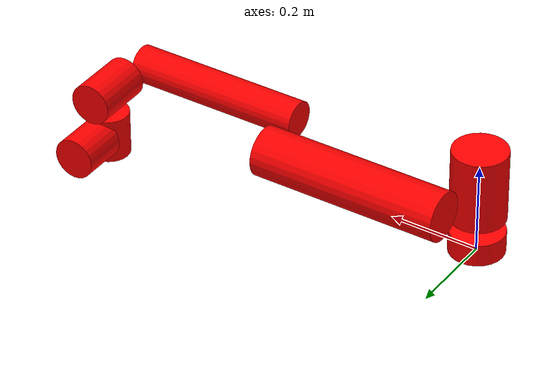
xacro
<?xml version="1.0"?>
<robot name="ur5e" xmlns:xacro="https://ros.org/wiki/xacro">

<!-- ROBOT LINK AND CONSTRUCTION PARAMETERS -->
<!-- The following parameters are obtained from official and unofficial site -->
<!-- https://github.com/ros-industrial/universal_robot -->

    <xacro:property name="shoulder_length" value="0.163"/>
    <xacro:property name="upperarm_length" value="0.425"/>
    <xacro:property name="forearm_length" value="0.3922"/>
    <xacro:property name="wrist1_length" value="0.127"/>
    <xacro:property name="wrist2_length" value="0.0997"/>
    <xacro:property name="wrist3_length" value="0.0996"/>

    <xacro:property name="base_mass" value="4.0"/>
    <xacro:property name="shoulder_mass" value="3.761"/>
    <xacro:property name="upperarm_mass" value="8.058"/>
    <xacro:property name="forearm_mass" value="2.846"/>
    <xacro:property name="wrist1_mass" value="1.37"/>
    <xacro:property name="wrist2_mass" value="1.3"/>
    <xacro:property name="wrist3_mass" value="0.365"/>

    <xacro:property name="shoulder_radius" value="0.06"/>
    <xacro:property name="upperarm_radius" value="0.054"/>
    <xacro:property name="forearm_radius" value="0.040"/>
    <xacro:property name="wrist_radius" value="0.045"/>

    <xacro:property name="shoulder_offset" value="0.138"/>
    <xacro:property name="elbow_offset" value="-0.131"/>
<!-- END OF PARAMETERS -->

<!-- MACROS -->
    <xacro:macro name="cylinder_inertial" params="radius length mass *origin">
        <inertial>
            <mass value="${mass}" />
            <xacro:insert_block name="origin" />
        <inertia ixx="${0.0833333 * mass * (3 * radius * radius + length * length)}" ixy="0.0" ixz="0.0"
            iyy="${0.0833333 * mass * (3 * radius * radius + length * length)}" iyz="0.0"
            izz="${0.5 * mass * radius * radius}" />
        </inertial>
    </xacro:macro>

    <xacro:macro name="transmission_block" params="joint_trans joint_name joint_motor">
        <transmission name="${joint_trans}">
            <type>transmission_interface/SimpleTransmission</type>
            <joint name="${joint_name}">
                <hardwareInterface>hardware_interface/PositionJointInterface</hardwareInterface>
            </joint>
            <actuator name="${joint_motor}">
                <mechanicalReduction>1</mechanicalReduction>
            </actuator>
        </transmission>
   </xacro:macro>

<!-- END OF MACROS -->

<!-- ROBOT LINK AND JOINTS -->
    <link name="world"/>

    <joint name="fixed" type="fixed">
        <parent link="world"/>
        <child link="base_link"/>
    </joint>

    <link name="base_link">
        <xacro:cylinder_inertial radius="0.06" length="0.05" mass="${base_mass}">
            <origin xyz="0.0 0.0 ${0.05/2}" rpy="0.0 0.0 0.0"/>
        </xacro:cylinder_inertial>
        <visual>
            <origin xyz="0.0 0.0 ${0.05/2}" rpy="0.0 0.0 0.0"/>
            <geometry>
                <cylinder radius="0.06" length="0.05"/>
            </geometry>
            <material name="">
                <color rgba="1.0 0.0 0.0 1.0"/>
            </material>
        </visual>
        <collision>
            <origin xyz="0.0 0.0 ${0.05/2}" rpy="0.0 0.0 0.0"/>
            <geometry>
                <cylinder radius="0.06" length="0.05"/>
            </geometry>
        </collision>
    </link>

    <joint name="shoulder_pan" type="revolute">
        <origin xyz="0.0 0.0 ${shoulder_length}" rpy="0.0 0.0 0.0"/>
        <parent link="base_link"/>
        <child link="shoulder_link"/>
        <axis xyz="0 0 1"/>
        <limit lower="${-2.0 * pi}" upper="${2.0 * pi}" effort="150.0" velocity="3.14"/>
        <dynamics damping="0.0" friction="0.0" />
    </joint>

    <link name="shoulder_link">
        <xacro:cylinder_inertial radius="${shoulder_radius}" length="${shoulder_length}" mass="${shoulder_mass}">
            <origin xyz="0.0 0.0 0.0" rpy="0.0 0.0 0.0"/>
        </xacro:cylinder_inertial>
        <visual>
            <origin xyz="0.0 0.0 0.0" rpy="0.0 0.0 0.0"/>
            <geometry>
                <cylinder radius="${shoulder_radius}" length="${shoulder_length}"/>
            </geometry>
            <material name="">
                <color rgba="1.0 0.0 0.0 1.0"/>
            </material>
        </visual>
        <collision>
            <origin xyz="0.0 0.0 0.0" rpy="0.0 0.0 0.0"/>
            <geometry>
                <cylinder radius="${shoulder_radius}" length="${shoulder_length}"/>
            </geometry>
        </collision>
    </link>

    <joint name="shoulder_lift" type="revolute">
        <origin xyz="0.0 ${shoulder_offset} 0.0" rpy="0.0 ${pi/2.0} 0.0"/>
        <parent link="shoulder_link"/>
        <child link="upperarm_link"/>
        <axis xyz="0.0 1.0 0.0"/>
        <limit lower="${-2.0 * pi}" upper="${2.0 * pi}" effort="150.0" velocity="3.14"/>
        <dynamics damping="0.0" friction="0.0" />
    </joint>

    <link name="upperarm_link">
        <xacro:cylinder_inertial radius="${upperarm_radius}" length="${upperarm_length}" mass="${upperarm_mass}">
            <origin xyz="0.0 0.0 ${upperarm_length/2}" rpy="0.0 0.0 0.0"/>
        </xacro:cylinder_inertial>
        <visual>
            <origin xyz="0.0 0.0 ${upperarm_length/2}" rpy="0.0 0.0 0.0"/>
            <geometry>
                <cylinder radius="${upperarm_radius}" length="${upperarm_length}"/>
            </geometry>
            <material name="">
                <color rgba="1.0 0.0 0.0 1.0"/>
            </material>
        </visual>
        <collision>
            <origin xyz="0.0 0.0 ${upperarm_length/2}" rpy="0.0 0.0 0.0"/>
            <geometry>
                <cylinder radius="${upperarm_radius}" length="${upperarm_length}"/>
            </geometry>
        </collision>
    </link>

    <joint name="elbow_joint" type="revolute">
        <origin xyz="0.0 ${elbow_offset} ${upperarm_length}" rpy="0.0 0.0 0.0"/>
        <parent link="upperarm_link"/>
        <child link="forearm_link"/>
        <axis xyz="0.0 1 0.0"/>
        <limit lower="${-pi}" upper="${pi}" effort="150.0" velocity="3.14"/>
        <dynamics damping="0.0" friction="0.0" />
    </joint>

    <link name="forearm_link">
        <xacro:cylinder_inertial radius="${forearm_radius}" length="${forearm_length}" mass="${forearm_mass}">
            <origin xyz="0.0 0.0 ${forearm_length/2}" rpy="0.0 0.0 0.0"/>
        </xacro:cylinder_inertial>
        <visual>
            <origin xyz="0.0 0.0 ${forearm_length/2}" rpy="0.0 0.0 0.0"/>
            <geometry>
                <cylinder radius="${forearm_radius}" length="${forearm_length}"/>
            </geometry>
            <material name="">
                <color rgba="1.0 0.0 0.0 1.0"/>
            </material>
        </visual>
        <collision>
            <origin xyz="0.0 0.0 ${forearm_length/2}" rpy="0.0 0.0 0.0"/>
            <geometry>
                <cylinder radius="${forearm_radius}" length="${forearm_length}"/>
            </geometry>
        </collision>
    </link>

    <joint name="wrist1_joint" type="revolute">
        <origin xyz="0.0 0.0 ${forearm_length}" rpy="0.0 ${pi/2.0} 0.0"/>
        <parent link="forearm_link"/>
        <child link="wrist1_link"/>
        <axis xyz="0.0 1 0.0"/>
        <limit lower="${-2.0*pi}" upper="${2.0*pi}" effort="150.0" velocity="3.14"/>
        <dynamics damping="0.0" friction="0.0" />
    </joint>

   <link name="wrist1_link">
        <xacro:cylinder_inertial radius="${wrist_radius}" length="${wrist1_length}" mass="${wrist1_mass}">
            <origin xyz="0.0 ${wrist1_length} 0.0" rpy="${pi/2} 0.0 0.0"/>
        </xacro:cylinder_inertial>
        <visual>
            <origin xyz="0.0 ${wrist1_length} 0.0" rpy="${pi/2} 0.0 0.0"/>
            <geometry>
                <cylinder radius="${wrist_radius}" length="${wrist1_length}"/>
            </geometry>
            <material name="">
                <color rgba="1.0 0.0 0.0 1.0"/>
            </material>
        </visual>
        <collision>
            <origin xyz="0.0 ${wrist1_length} 0.0" rpy="${pi/2} 0.0 0.0"/>
            <geometry>
                <cylinder radius="${wrist_radius}" length="${wrist1_length}"/>
            </geometry>
        </collision>
    </link>

    <joint name="wrist2_joint" type="revolute">
        <origin xyz="0.0 ${wrist1_length} 0.0" rpy="0.0 0.0 0.0"/>
        <parent link="wrist1_link"/>
        <child link="wrist2_link"/>
        <axis xyz="0.0 0.0 1"/>
        <limit lower="${-2.0*pi}" upper="${2.0*pi}" effort="150.0" velocity="3.14"/>
        <dynamics damping="0.0" friction="0.0" />
    </joint>

   <link name="wrist2_link">
        <xacro:cylinder_inertial radius="${wrist_radius}" length="${wrist2_length}" mass="${wrist2_mass}">
            <origin xyz="0.0 0.0 ${wrist2_length}" rpy="0.0 0.0 0.0"/>
        </xacro:cylinder_inertial>
        <visual>
            <origin xyz="0.0 0.0 ${wrist2_length}" rpy="0.0 0.0 0.0"/>
            <geometry>
                <cylinder radius="${wrist_radius}" length="${wrist2_length}"/>
            </geometry>
            <material name="">
                <color rgba="1.0 0.0 0.0 1.0"/>
            </material>
        </visual>
        <collision>
            <origin xyz="0.0 0.0 ${wrist2_length}" rpy="0.0 0.0 0.0"/>
            <geometry>
                <cylinder radius="${wrist_radius}" length="${wrist2_length}"/>
            </geometry>
        </collision>
    </link>

    <joint name="wrist3_joint" type="revolute">
        <origin xyz="0.0 0.0 ${wrist2_length}" rpy="0.0 0.0 0.0"/>
        <parent link="wrist2_link"/>
        <child link="wrist3_link"/>
        <axis xyz="0.0 1 0.0"/>
        <limit lower="${-2.0*pi}" upper="${2.0*pi}" effort="150.0" velocity="3.14"/>
        <dynamics damping="0.0" friction="0.0" />
    </joint>

   <link name="wrist3_link">
        <xacro:cylinder_inertial radius="${wrist_radius}" length="${wrist3_length}" mass="${wrist3_mass}">
            <origin xyz="0.0 ${wrist3_length - wrist_radius/2} 0.0" rpy="${pi/2} 0.0 0.0"/>
        </xacro:cylinder_inertial>
        <visual>
            <origin xyz="0.0 ${wrist3_length - wrist_radius/2} 0.0" rpy="${pi/2} 0.0 0.0"/>
            <geometry>
                <cylinder radius="${wrist_radius}" length="${wrist3_length}"/>
            </geometry>
            <material name="">
                <color rgba="1.0 0.0 0.0 1.0"/>
            </material>
        </visual>
        <collision>
            <origin xyz="0.0 ${wrist3_length - wrist_radius/2} 0.0" rpy="${pi/2} 0.0 0.0"/>
            <geometry>
                <cylinder radius="${wrist_radius}" length="${wrist3_length}"/>
            </geometry>
        </collision>
    </link>

    <joint name="ee_joint" type="fixed">
        <origin xyz="0.0 ${wrist3_length} 0.0" rpy="0.0 0.0 ${pi/2.0}"/>
        <parent link="wrist3_link"/>
        <child link="ee_link"/>
    </joint>

   <link name="ee_link">
        <collision>
            <origin xyz="0.0 0.0 0.0" rpy="-0.05 0.0 0.0"/>
            <geometry>
                <box size="0.03 0.03 0.03"/>
            </geometry>
        </collision>
    </link>

<!-- END OF ROBOT LINK AND JOINTS -->
    <gazebo>
        <plugin name="gazebo_ros_control" filename="libgazebo_ros_control.so">
            <robotNamespace>/ur5e</robotNamespace>
        </plugin>
    </gazebo>

    <xacro:transmission_block joint_trans="shoulder_pan_trans" joint_name="shoulder_pan" joint_motor="shoulder_pan_motor"/>
    <xacro:transmission_block joint_trans="shoulder_lift_trans" joint_name="shoulder_lift" joint_motor="shoulder_lift_motor"/>
    <xacro:transmission_block joint_trans="elbow_joint_trans" joint_name="elbow_joint" joint_motor="elbow_joint_motor"/>
    <xacro:transmission_block joint_trans="wrist1_joint_trans" joint_name="wrist1_joint" joint_motor="wrist1_joint_motor"/>
    <xacro:transmission_block joint_trans="wrist2_joint_trans" joint_name="wrist2_joint" joint_motor="wrist2_joint_motor"/>
    <xacro:transmission_block joint_trans="wrist3_joint_trans" joint_name="wrist3_joint" joint_motor="wrist3_joint_motor"/>

    <gazebo reference="base_link">
        <material>Gazebo/White</material>
    </gazebo>
    <gazebo reference="shoulder_link">
        <material>Gazebo/Red</material>
    </gazebo>
    <gazebo reference="upperarm_link">
        <material>Gazebo/White</material>
    </gazebo>
    <gazebo reference="wrist1_link">
        <material>Gazebo/Red</material>
    </gazebo>
    <gazebo reference="wrist2_link">
        <material>Gazebo/White</material>
    </gazebo>
    <gazebo reference="wrist3_link">
        <material>Gazebo/Red</material>
    </gazebo>

</robot>
